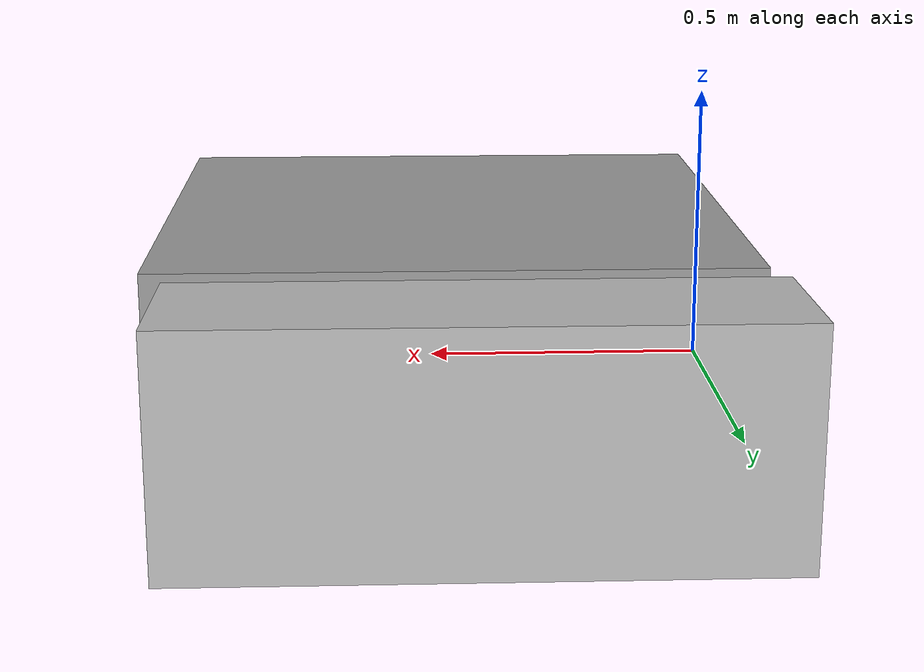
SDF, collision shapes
<?xml version='1.0'?>
<sdf version='1.6'>
  <model name='platform'>
    <link name='link'>
      <inertial>
        <mass>1</mass>
        <inertia>
          <ixx>0.166667</ixx>
          <ixy>0</ixy>
          <ixz>0</ixz>
          <iyy>0.166667</iyy>
          <iyz>0</iyz>
          <izz>0.166667</izz>
        </inertia>
        <pose frame=''>0 0 0 0 -0 0</pose>
      </inertial>
      <self_collide>0</self_collide>
      <enable_wind>0</enable_wind>
      <kinematic>0</kinematic>
      <pose frame=''>0.473378 0.413143 0.113529 0 -0 0</pose>
      <gravity>1</gravity>
      <visual name='visual'>
        <geometry>
          <mesh>
            <uri>model://platform/meshes/platform_main_body_v1.stl</uri>
            <scale>0.0015 0.0015 0.0015</scale>
          </mesh>
        </geometry>
        <material>
          <script>
            <name>Gazebo/Grey</name>
            <uri>file://media/materials/scripts/gazebo.material</uri>
          </script>
          <shader type='pixel'>
            <normal_map>__default__</normal_map>
          </shader>
          <ambient>0.3 0.3 0.3 1</ambient>
          <diffuse>0.7 0.7 0.7 1</diffuse>
          <specular>0.01 0.01 0.01 1</specular>
          <emissive>0 0 0 1</emissive>
        </material>
        <pose frame=''>-0.46 -0.41 -0.1 0 -0 0</pose>
        <transparency>0</transparency>
        <cast_shadows>1</cast_shadows>
      </visual>
      <collision name='collision'>
        <laser_retro>0</laser_retro>
        <max_contacts>10</max_contacts>
        <pose frame=''>-0.01 0 -0.04 0 -0 0</pose>
        <geometry>
          <box>
            <size>0.88 0.8 0.1</size>
          </box>
        </geometry>
        <surface>
          <friction>
            <ode>
              <mu>1</mu>
              <mu2>1</mu2>
              <fdir1>0 0 0</fdir1>
              <slip1>0</slip1>
              <slip2>0</slip2>
            </ode>
            <torsional>
              <coefficient>1</coefficient>
              <patch_radius>0</patch_radius>
              <surface_radius>0</surface_radius>
              <use_patch_radius>1</use_patch_radius>
              <ode>
                <slip>0</slip>
              </ode>
            </torsional>
          </friction>
          <bounce>
            <restitution_coefficient>0</restitution_coefficient>
            <threshold>1e+06</threshold>
          </bounce>
          <contact>
            <collide_without_contact>0</collide_without_contact>
            <collide_without_contact_bitmask>1</collide_without_contact_bitmask>
            <collide_bitmask>1</collide_bitmask>
            <ode>
              <soft_cfm>0</soft_cfm>
              <soft_erp>0.2</soft_erp>
              <kp>1e+13</kp>
              <kd>1</kd>
              <max_vel>0.01</max_vel>
              <min_depth>0</min_depth>
            </ode>
            <bullet>
              <split_impulse>1</split_impulse>
              <split_impulse_penetration_threshold>-0.01</split_impulse_penetration_threshold>
              <soft_cfm>0</soft_cfm>
              <soft_erp>0.2</soft_erp>
              <kp>1e+13</kp>
              <kd>1</kd>
            </bullet>
          </contact>
        </surface>
      </collision>
    </link>
    <link name='link_0'>
      <inertial>
        <mass>1</mass>
        <inertia>
          <ixx>0.166667</ixx>
          <ixy>0</ixy>
          <ixz>0</ixz>
          <iyy>0.166667</iyy>
          <iyz>0</iyz>
          <izz>0.166667</izz>
        </inertia>
        <pose frame=''>0 0 0 0 -0 0</pose>
      </inertial>
      <pose frame=''>0.451815 0.929527 0.190905 0 -0 0</pose>
      <gravity>1</gravity>
      <self_collide>0</self_collide>
      <kinematic>0</kinematic>
      <enable_wind>0</enable_wind>
      <collision name='collision'>
        <laser_retro>0</laser_retro>
        <max_contacts>10</max_contacts>
        <pose frame=''>0 0 0 0 -0 0</pose>
        <geometry>
          <box>
            <size>0.88 0.23 0.35</size>
          </box>
        </geometry>
        <surface>
          <friction>
            <ode>
              <mu>1</mu>
              <mu2>1</mu2>
              <fdir1>0 0 0</fdir1>
              <slip1>0</slip1>
              <slip2>0</slip2>
            </ode>
            <torsional>
              <coefficient>1</coefficient>
              <patch_radius>0</patch_radius>
              <surface_radius>0</surface_radius>
              <use_patch_radius>1</use_patch_radius>
              <ode>
                <slip>0</slip>
              </ode>
            </torsional>
          </friction>
          <bounce>
            <restitution_coefficient>0</restitution_coefficient>
            <threshold>1e+06</threshold>
          </bounce>
          <contact>
            <collide_without_contact>0</collide_without_contact>
            <collide_without_contact_bitmask>1</collide_without_contact_bitmask>
            <collide_bitmask>1</collide_bitmask>
            <ode>
              <soft_cfm>0</soft_cfm>
              <soft_erp>0.2</soft_erp>
              <kp>1e+13</kp>
              <kd>1</kd>
              <max_vel>0.01</max_vel>
              <min_depth>0</min_depth>
            </ode>
            <bullet>
              <split_impulse>1</split_impulse>
              <split_impulse_penetration_threshold>-0.01</split_impulse_penetration_threshold>
              <soft_cfm>0</soft_cfm>
              <soft_erp>0.2</soft_erp>
              <kp>1e+13</kp>
              <kd>1</kd>
            </bullet>
          </contact>
        </surface>
      </collision>
    </link>
    <link name='link_0_0'>
      <inertial>
        <mass>1</mass>
        <inertia>
          <ixx>0.166667</ixx>
          <ixy>0</ixy>
          <ixz>0</ixz>
          <iyy>0.166667</iyy>
          <iyz>0</iyz>
          <izz>0.166667</izz>
        </inertia>
        <pose frame=''>0 0 0 0 -0 0</pose>
      </inertial>
      <pose frame=''>0.482695 0.413348 0.381955 -0.009513 -0 1.2e-05</pose>
      <gravity>0</gravity>
      <self_collide>0</self_collide>
      <kinematic>1</kinematic>
      <enable_wind>0</enable_wind>
      <visual name='visual'>
        <pose frame=''>-0.47 -0.4 -0.13 0 -0 0</pose>
        <geometry>
          <mesh>
            <uri>model://platform/meshes/platform_roof_v1.stl</uri>
            <scale>0.0015 0.0015 0.0015</scale>
          </mesh>
        </geometry>
        <material>
          <lighting>1</lighting>
          <script>
            <uri>file://media/materials/scripts/gazebo.material</uri>
            <name>Gazebo/Grey</name>
          </script>
          <shader type='pixel'>
            <normal_map>__default__</normal_map>
          </shader>
          <ambient>0.3 0.3 0.3 1</ambient>
          <diffuse>0.7 0.7 0.7 1</diffuse>
          <specular>0.01 0.01 0.01 1</specular>
          <emissive>0 0 0 1</emissive>
        </material>
        <transparency>0</transparency>
        <cast_shadows>1</cast_shadows>
      </visual>
      <collision name='collision'>
        <laser_retro>0</laser_retro>
        <max_contacts>10</max_contacts>
        <pose frame=''>0 0 -0.05 0 -0 0</pose>
        <geometry>
          <box>
            <size>0.88 0.8 0.1</size>
          </box>
        </geometry>
        <surface>
          <friction>
            <ode>
              <mu>1</mu>
              <mu2>1</mu2>
              <fdir1>0 0 0</fdir1>
              <slip1>0</slip1>
              <slip2>0</slip2>
            </ode>
            <torsional>
              <coefficient>1</coefficient>
              <patch_radius>0</patch_radius>
              <surface_radius>0</surface_radius>
              <use_patch_radius>1</use_patch_radius>
              <ode>
                <slip>0</slip>
              </ode>
            </torsional>
          </friction>
          <bounce>
            <restitution_coefficient>0</restitution_coefficient>
            <threshold>1e+06</threshold>
          </bounce>
          <contact>
            <collide_without_contact>0</collide_without_contact>
            <collide_without_contact_bitmask>1</collide_without_contact_bitmask>
            <collide_bitmask>1</collide_bitmask>
            <ode>
              <soft_cfm>0</soft_cfm>
              <soft_erp>0.2</soft_erp>
              <kp>1e+13</kp>
              <kd>1</kd>
              <max_vel>0.01</max_vel>
              <min_depth>0</min_depth>
            </ode>
            <bullet>
              <split_impulse>1</split_impulse>
              <split_impulse_penetration_threshold>-0.01</split_impulse_penetration_threshold>
              <soft_cfm>0</soft_cfm>
              <soft_erp>0.2</soft_erp>
              <kp>1e+13</kp>
              <kd>1</kd>
            </bullet>
          </contact>
        </surface>
      </collision>
    </link>
    <joint name='link_JOINT_0' type='fixed'>
      <parent>link</parent>
      <child>link_0</child>
      <pose frame=''>0 0 0 0 -0 0</pose>
      <physics>
        <ode>
          <limit>
            <cfm>0</cfm>
            <erp>0.2</erp>
          </limit>
          <suspension>
            <cfm>0</cfm>
            <erp>0.2</erp>
          </suspension>
        </ode>
      </physics>
    </joint>
    <joint name='link_JOINT_roof' type='prismatic'>
      <parent>link</parent>
      <child>link_0_0</child>
      <pose frame=''>0 0 0 0 -0 0</pose>
      <axis>
        <xyz>0 0 -1</xyz>
        <use_parent_model_frame>0</use_parent_model_frame>
        <limit>
          <lower>0</lower>
          <upper>3</upper>
          <effort>1000</effort>
          <velocity>-0.06</velocity>
        </limit>
        <dynamics>
          <spring_reference>0</spring_reference>
          <spring_stiffness>0</spring_stiffness>
          <damping>1</damping>
          <friction>0</friction>
        </dynamics>
      </axis>
      <physics>
        <ode>
          <limit>
            <cfm>0</cfm>
            <erp>0.2</erp>
          </limit>
          <suspension>
            <cfm>0</cfm>
            <erp>0.2</erp>
          </suspension>
        </ode>
      </physics>
    </joint>
    <static>0</static>
    <allow_auto_disable>1</allow_auto_disable>
  </model>
</sdf>
